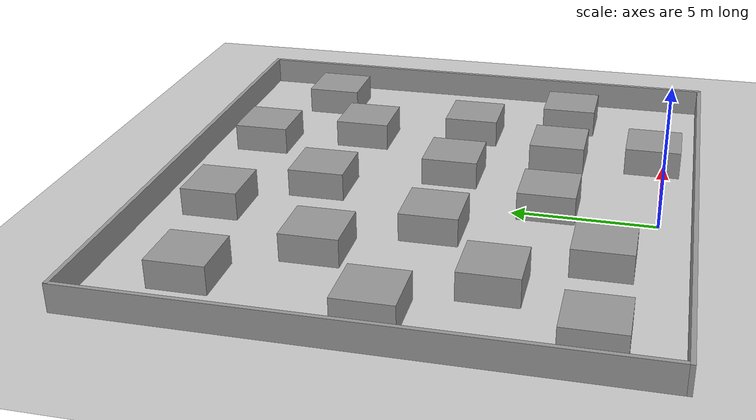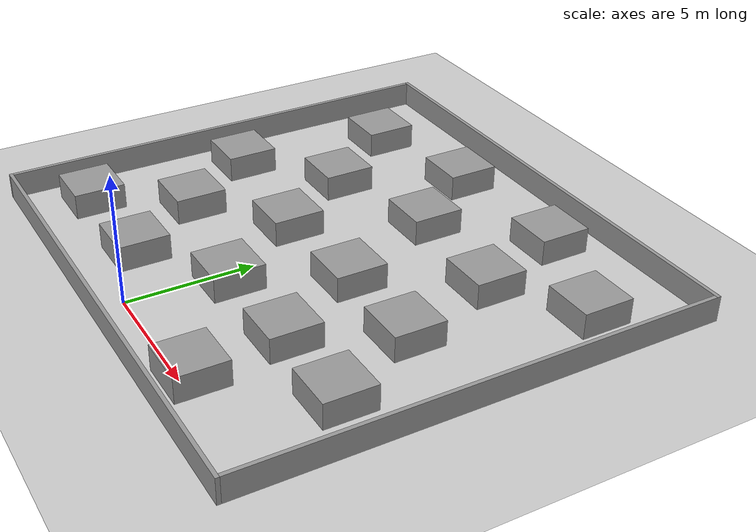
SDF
<sdf version="1.6">
 <world name="default">
  <light name="sun" type="directional">
   <pose>0 0 10 0 -0 0</pose>
   <diffuse>0.8 0.8 0.8 1</diffuse>
   <specular>0.2 0.2 0.2 1</specular>
   <attenuation>
    <range>1000</range>
    <constant>0.9</constant>
    <linear>0.01</linear>
    <quadratic>0.001</quadratic>
   </attenuation>
   <direction>-0.5 0.1 -0.9</direction>
  </light>
  <model name="ground_plane">
   <static>1</static>
   <link name="link">
    <collision name="collision">
     <geometry><plane><normal>0 0 1</normal><size>100 100</size></plane></geometry>
     <surface><friction><ode><mu>100</mu><mu2>50</mu2></ode></friction></surface>
    </collision>
    <visual name="visual">
     <cast_shadows>0</cast_shadows>
     <geometry><plane><normal>0 0 1</normal><size>100 100</size></plane></geometry>
     <material>
      <script><uri>file://media/materials/scripts/gazebo.material</uri><name>Gazebo/Grey</name></script>
     </material>
    </visual>
   </link>
  </model>
  <gravity>0 0 -9.8</gravity>
  <magnetic_field>6e-06 2.3e-05 -4.2e-05</magnetic_field>
  <atmosphere type="adiabatic"/>
  <physics name="default_physics" default="0" type="ode">
   <max_step_size>0.001</max_step_size>
   <real_time_factor>1</real_time_factor>
   <real_time_update_rate>1000</real_time_update_rate>
  </physics>
  <scene><ambient>0.4 0.4 0.4 1</ambient><background>0.7 0.7 0.7 1</background><shadows>1</shadows></scene>
  <spherical_coordinates>
   <surface_model>EARTH_WGS84</surface_model>
   <latitude_deg>0</latitude_deg>
   <longitude_deg>0</longitude_deg>
   <elevation>0</elevation>
   <heading_deg>0</heading_deg>
  </spherical_coordinates>
  <model name="map1">
   <pose>0.69437 8.013 0 0 -0 0</pose>
   <link name="Wall_0">
    <collision name="Wall_0_Collision">
     <geometry><box><size>20 0.15 1</size></box></geometry>
     <pose>0 0 0.5 0 -0 0</pose>
    </collision>
    <visual name="Wall_0_Visual">
     <pose>0 0 0.5 0 -0 0</pose>
     <geometry><box><size>20 0.15 1</size></box></geometry>
     <material>
      <script><uri>file://media/materials/scripts/gazebo.material</uri><name>Gazebo/Grey</name></script>
      <ambient>1 1 1 1</ambient>
     </material>
     <meta><layer>0</layer></meta>
    </visual>
    <pose>0 9.175 0 0 -0 0</pose>
   </link>
   <link name="Wall_3">
    <collision name="Wall_3_Collision">
     <geometry><box><size>18.5 0.15 1</size></box></geometry>
     <pose>0 0 0.5 0 -0 0</pose>
    </collision>
    <visual name="Wall_3_Visual">
     <pose>0 0 0.5 0 -0 0</pose>
     <geometry><box><size>18.5 0.15 1</size></box></geometry>
     <material>
      <script><uri>file://media/materials/scripts/gazebo.material</uri><name>Gazebo/Grey</name></script>
      <ambient>1 1 1 1</ambient>
     </material>
     <meta><layer>0</layer></meta>
    </visual>
    <pose>9.925 0 0 0 -0 -1.5708</pose>
   </link>
   <link name="Wall_4">
    <collision name="Wall_4_Collision">
     <geometry><box><size>20 0.15 1</size></box></geometry>
     <pose>0 0 0.5 0 -0 0</pose>
    </collision>
    <visual name="Wall_4_Visual">
     <pose>0 0 0.5 0 -0 0</pose>
     <geometry><box><size>20 0.15 1</size></box></geometry>
     <material>
      <script><uri>file://media/materials/scripts/gazebo.material</uri><name>Gazebo/Grey</name></script>
      <ambient>1 1 1 1</ambient>
     </material>
     <meta><layer>0</layer></meta>
    </visual>
    <pose>0 -9.175 0 0 -0 3.14159</pose>
   </link>
   <link name="Wall_5">
    <collision name="Wall_5_Collision">
     <geometry><box><size>18.5 0.15 1</size></box></geometry>
     <pose>0 0 0.5 0 -0 0</pose>
    </collision>
    <visual name="Wall_5_Visual">
     <pose>0 0 0.5 0 -0 0</pose>
     <geometry><box><size>18.5 0.15 1</size></box></geometry>
     <material>
      <script><uri>file://media/materials/scripts/gazebo.material</uri><name>Gazebo/Grey</name></script>
      <ambient>1 1 1 1</ambient>
     </material>
     <meta><layer>0</layer></meta>
    </visual>
    <pose>-9.925 0 0 0 -0 1.5708</pose>
   </link>
   <static>1</static>
  </model>
  <model name="box3">
   <link name="link_0">
    <inertial>
     <mass>200</mass>
     <inertia><ixx>83.3333</ixx><ixy>0</ixy><ixz>0</ixz><iyy>83.3333</iyy><iyz>0</iyz><izz>133.333</izz></inertia>
     <pose>0 0 1 0 -0 0</pose>
    </inertial>
    <visual name="visual">
     <geometry><box><size>2 2 1</size></box></geometry>
     <material>
      <lighting>1</lighting>
      <script><uri>file://media/materials/scripts/gazebo.material</uri><name>Gazebo/Grey</name></script>
      <shader type="pixel"><normal_map>__default__</normal_map></shader>
      <ambient>0.3 0.3 0.3 1</ambient>
      <diffuse>0.7 0.7 0.7 1</diffuse>
      <specular>0.01 0.01 0.01 1</specular>
      <emissive>0 0 0 1</emissive>
     </material>
    </visual>
    <collision name="collision">
     <geometry><box><size>2 2 1</size></box></geometry>
     <surface>
      <friction>
       <ode><mu>1</mu><mu2>1</mu2><fdir1>0 0 0</fdir1><slip1>0</slip1><slip2>0</slip2></ode>
       <torsional>
        <coefficient>1</coefficient>
        <patch_radius>0</patch_radius>
        <surface_radius>0</surface_radius>
        <use_patch_radius>1</use_patch_radius>
        <ode><slip>0</slip></ode>
       </torsional>
      </friction>
      <bounce><restitution_coefficient>0</restitution_coefficient><threshold>1e+06</threshold></bounce>
      <contact>
       <collide_without_contact>0</collide_without_contact>
       <collide_without_contact_bitmask>1</collide_without_contact_bitmask>
       <collide_bitmask>1</collide_bitmask>
       <ode>
        <soft_cfm>0</soft_cfm>
        <soft_erp>0.2</soft_erp>
        <kp>1e+13</kp>
        <kd>1</kd>
        <max_vel>0.01</max_vel>
        <min_depth>0</min_depth>
       </ode>
       <bullet>
        <split_impulse>1</split_impulse>
        <split_impulse_penetration_threshold>-0.01</split_impulse_penetration_threshold>
        <soft_cfm>0</soft_cfm>
        <soft_erp>0.2</soft_erp>
        <kp>1e+13</kp>
        <kd>1</kd>
       </bullet>
      </contact>
     </surface>
    </collision>
   </link>
   <static>0</static>
   <pose>-2.92137 1.59133 0.499999 -1e-06 2e-06 0.000103</pose>
  </model>
  <model name="box3_clone">
   <link name="link_0">
    <inertial>
     <mass>200</mass>
     <inertia><ixx>83.3333</ixx><ixy>0</ixy><ixz>0</ixz><iyy>83.3333</iyy><iyz>0</iyz><izz>133.333</izz></inertia>
     <pose>0 0 1 0 -0 0</pose>
    </inertial>
    <visual name="visual">
     <geometry><box><size>2 2 1</size></box></geometry>
     <material>
      <lighting>1</lighting>
      <script><uri>file://media/materials/scripts/gazebo.material</uri><name>Gazebo/Grey</name></script>
      <shader type="pixel"><normal_map>__default__</normal_map></shader>
      <ambient>0.3 0.3 0.3 1</ambient>
      <diffuse>0.7 0.7 0.7 1</diffuse>
      <specular>0.01 0.01 0.01 1</specular>
      <emissive>0 0 0 1</emissive>
     </material>
    </visual>
    <collision name="collision">
     <geometry><box><size>2 2 1</size></box></geometry>
     <surface>
      <friction>
       <ode><mu>1</mu><mu2>1</mu2><fdir1>0 0 0</fdir1><slip1>0</slip1><slip2>0</slip2></ode>
       <torsional>
        <coefficient>1</coefficient>
        <patch_radius>0</patch_radius>
        <surface_radius>0</surface_radius>
        <use_patch_radius>1</use_patch_radius>
        <ode><slip>0</slip></ode>
       </torsional>
      </friction>
      <bounce><restitution_coefficient>0</restitution_coefficient><threshold>1e+06</threshold></bounce>
      <contact>
       <collide_without_contact>0</collide_without_contact>
       <collide_without_contact_bitmask>1</collide_without_contact_bitmask>
       <collide_bitmask>1</collide_bitmask>
       <ode>
        <soft_cfm>0</soft_cfm>
        <soft_erp>0.2</soft_erp>
        <kp>1e+13</kp>
        <kd>1</kd>
        <max_vel>0.01</max_vel>
        <min_depth>0</min_depth>
       </ode>
       <bullet>
        <split_impulse>1</split_impulse>
        <split_impulse_penetration_threshold>-0.01</split_impulse_penetration_threshold>
        <soft_cfm>0</soft_cfm>
        <soft_erp>0.2</soft_erp>
        <kp>1e+13</kp>
        <kd>1</kd>
       </bullet>
      </contact>
     </surface>
    </collision>
   </link>
   <static>0</static>
   <pose>0.552627 3.76358 0.5 0 -0 0.000101</pose>
  </model>
  <model name="box3_clone_0">
   <link name="link_0">
    <inertial>
     <mass>200</mass>
     <inertia><ixx>83.3333</ixx><ixy>0</ixy><ixz>0</ixz><iyy>83.3333</iyy><iyz>0</iyz><izz>133.333</izz></inertia>
     <pose>0 0 1 0 -0 0</pose>
    </inertial>
    <visual name="visual">
     <geometry><box><size>2 2 1</size></box></geometry>
     <material>
      <lighting>1</lighting>
      <script><uri>file://media/materials/scripts/gazebo.material</uri><name>Gazebo/Grey</name></script>
      <shader type="pixel"><normal_map>__default__</normal_map></shader>
      <ambient>0.3 0.3 0.3 1</ambient>
      <diffuse>0.7 0.7 0.7 1</diffuse>
      <specular>0.01 0.01 0.01 1</specular>
      <emissive>0 0 0 1</emissive>
     </material>
    </visual>
    <collision name="collision">
     <geometry><box><size>2 2 1</size></box></geometry>
     <surface>
      <friction>
       <ode><mu>1</mu><mu2>1</mu2><fdir1>0 0 0</fdir1><slip1>0</slip1><slip2>0</slip2></ode>
       <torsional>
        <coefficient>1</coefficient>
        <patch_radius>0</patch_radius>
        <surface_radius>0</surface_radius>
        <use_patch_radius>1</use_patch_radius>
        <ode><slip>0</slip></ode>
       </torsional>
      </friction>
      <bounce><restitution_coefficient>0</restitution_coefficient><threshold>1e+06</threshold></bounce>
      <contact>
       <collide_without_contact>0</collide_without_contact>
       <collide_without_contact_bitmask>1</collide_without_contact_bitmask>
       <collide_bitmask>1</collide_bitmask>
       <ode>
        <soft_cfm>0</soft_cfm>
        <soft_erp>0.2</soft_erp>
        <kp>1e+13</kp>
        <kd>1</kd>
        <max_vel>0.01</max_vel>
        <min_depth>0</min_depth>
       </ode>
       <bullet>
        <split_impulse>1</split_impulse>
        <split_impulse_penetration_threshold>-0.01</split_impulse_penetration_threshold>
        <soft_cfm>0</soft_cfm>
        <soft_erp>0.2</soft_erp>
        <kp>1e+13</kp>
        <kd>1</kd>
       </bullet>
      </contact>
     </surface>
    </collision>
   </link>
   <static>0</static>
   <pose>4.61992 3.90113 0.499999 -1e-06 2e-06 0.000101</pose>
  </model>
  <model name="box3_clone_1">
   <link name="link_0">
    <inertial>
     <mass>200</mass>
     <inertia><ixx>83.3333</ixx><ixy>0</ixy><ixz>0</ixz><iyy>83.3333</iyy><iyz>0</iyz><izz>133.333</izz></inertia>
     <pose>0 0 1 0 -0 0</pose>
    </inertial>
    <visual name="visual">
     <geometry><box><size>2 2 1</size></box></geometry>
     <material>
      <lighting>1</lighting>
      <script><uri>file://media/materials/scripts/gazebo.material</uri><name>Gazebo/Grey</name></script>
      <shader type="pixel"><normal_map>__default__</normal_map></shader>
      <ambient>0.3 0.3 0.3 1</ambient>
      <diffuse>0.7 0.7 0.7 1</diffuse>
      <specular>0.01 0.01 0.01 1</specular>
      <emissive>0 0 0 1</emissive>
     </material>
    </visual>
    <collision name="collision">
     <geometry><box><size>2 2 1</size></box></geometry>
     <surface>
      <friction>
       <ode><mu>1</mu><mu2>1</mu2><fdir1>0 0 0</fdir1><slip1>0</slip1><slip2>0</slip2></ode>
       <torsional>
        <coefficient>1</coefficient>
        <patch_radius>0</patch_radius>
        <surface_radius>0</surface_radius>
        <use_patch_radius>1</use_patch_radius>
        <ode><slip>0</slip></ode>
       </torsional>
      </friction>
      <bounce><restitution_coefficient>0</restitution_coefficient><threshold>1e+06</threshold></bounce>
      <contact>
       <collide_without_contact>0</collide_without_contact>
       <collide_without_contact_bitmask>1</collide_without_contact_bitmask>
       <collide_bitmask>1</collide_bitmask>
       <ode>
        <soft_cfm>0</soft_cfm>
        <soft_erp>0.2</soft_erp>
        <kp>1e+13</kp>
        <kd>1</kd>
        <max_vel>0.01</max_vel>
        <min_depth>0</min_depth>
       </ode>
       <bullet>
        <split_impulse>1</split_impulse>
        <split_impulse_penetration_threshold>-0.01</split_impulse_penetration_threshold>
        <soft_cfm>0</soft_cfm>
        <soft_erp>0.2</soft_erp>
        <kp>1e+13</kp>
        <kd>1</kd>
       </bullet>
      </contact>
     </surface>
    </collision>
   </link>
   <static>0</static>
   <pose>8.29547 3.85447 0.5 0 -0 0.000103</pose>
  </model>
  <model name="box3_clone_2">
   <link name="link_0">
    <inertial>
     <mass>200</mass>
     <inertia><ixx>83.3333</ixx><ixy>0</ixy><ixz>0</ixz><iyy>83.3333</iyy><iyz>0</iyz><izz>133.333</izz></inertia>
     <pose>0 0 1 0 -0 0</pose>
    </inertial>
    <visual name="visual">
     <geometry><box><size>2 2 1</size></box></geometry>
     <material>
      <lighting>1</lighting>
      <script><uri>file://media/materials/scripts/gazebo.material</uri><name>Gazebo/Grey</name></script>
      <shader type="pixel"><normal_map>__default__</normal_map></shader>
      <ambient>0.3 0.3 0.3 1</ambient>
      <diffuse>0.7 0.7 0.7 1</diffuse>
      <specular>0.01 0.01 0.01 1</specular>
      <emissive>0 0 0 1</emissive>
     </material>
    </visual>
    <collision name="collision">
     <geometry><box><size>2 2 1</size></box></geometry>
     <surface>
      <friction>
       <ode><mu>1</mu><mu2>1</mu2><fdir1>0 0 0</fdir1><slip1>0</slip1><slip2>0</slip2></ode>
       <torsional>
        <coefficient>1</coefficient>
        <patch_radius>0</patch_radius>
        <surface_radius>0</surface_radius>
        <use_patch_radius>1</use_patch_radius>
        <ode><slip>0</slip></ode>
       </torsional>
      </friction>
      <bounce><restitution_coefficient>0</restitution_coefficient><threshold>1e+06</threshold></bounce>
      <contact>
       <collide_without_contact>0</collide_without_contact>
       <collide_without_contact_bitmask>1</collide_without_contact_bitmask>
       <collide_bitmask>1</collide_bitmask>
       <ode>
        <soft_cfm>0</soft_cfm>
        <soft_erp>0.2</soft_erp>
        <kp>1e+13</kp>
        <kd>1</kd>
        <max_vel>0.01</max_vel>
        <min_depth>0</min_depth>
       </ode>
       <bullet>
        <split_impulse>1</split_impulse>
        <split_impulse_penetration_threshold>-0.01</split_impulse_penetration_threshold>
        <soft_cfm>0</soft_cfm>
        <soft_erp>0.2</soft_erp>
        <kp>1e+13</kp>
        <kd>1</kd>
       </bullet>
      </contact>
     </surface>
    </collision>
   </link>
   <static>0</static>
   <pose>6.46975 7.45687 0.499999 1e-06 -2e-06 0.000103</pose>
  </model>
  <model name="box3_clone_3">
   <link name="link_0">
    <inertial>
     <mass>200</mass>
     <inertia><ixx>83.3333</ixx><ixy>0</ixy><ixz>0</ixz><iyy>83.3333</iyy><iyz>0</iyz><izz>133.333</izz></inertia>
     <pose>0 0 1 0 -0 0</pose>
    </inertial>
    <visual name="visual">
     <geometry><box><size>2 2 1</size></box></geometry>
     <material>
      <lighting>1</lighting>
      <script><uri>file://media/materials/scripts/gazebo.material</uri><name>Gazebo/Grey</name></script>
      <shader type="pixel"><normal_map>__default__</normal_map></shader>
      <ambient>0.3 0.3 0.3 1</ambient>
      <diffuse>0.7 0.7 0.7 1</diffuse>
      <specular>0.01 0.01 0.01 1</specular>
      <emissive>0 0 0 1</emissive>
     </material>
    </visual>
    <collision name="collision">
     <geometry><box><size>2 2 1</size></box></geometry>
     <surface>
      <friction>
       <ode><mu>1</mu><mu2>1</mu2><fdir1>0 0 0</fdir1><slip1>0</slip1><slip2>0</slip2></ode>
       <torsional>
        <coefficient>1</coefficient>
        <patch_radius>0</patch_radius>
        <surface_radius>0</surface_radius>
        <use_patch_radius>1</use_patch_radius>
        <ode><slip>0</slip></ode>
       </torsional>
      </friction>
      <bounce><restitution_coefficient>0</restitution_coefficient><threshold>1e+06</threshold></bounce>
      <contact>
       <collide_without_contact>0</collide_without_contact>
       <collide_without_contact_bitmask>1</collide_without_contact_bitmask>
       <collide_bitmask>1</collide_bitmask>
       <ode>
        <soft_cfm>0</soft_cfm>
        <soft_erp>0.2</soft_erp>
        <kp>1e+13</kp>
        <kd>1</kd>
        <max_vel>0.01</max_vel>
        <min_depth>0</min_depth>
       </ode>
       <bullet>
        <split_impulse>1</split_impulse>
        <split_impulse_penetration_threshold>-0.01</split_impulse_penetration_threshold>
        <soft_cfm>0</soft_cfm>
        <soft_erp>0.2</soft_erp>
        <kp>1e+13</kp>
        <kd>1</kd>
       </bullet>
      </contact>
     </surface>
    </collision>
   </link>
   <static>0</static>
   <pose>2.56214 7.514 0.499999 -1e-06 -2e-06 9.7e-05</pose>
  </model>
  <model name="box3_clone_4">
   <link name="link_0">
    <inertial>
     <mass>200</mass>
     <inertia><ixx>83.3333</ixx><ixy>0</ixy><ixz>0</ixz><iyy>83.3333</iyy><iyz>0</iyz><izz>133.333</izz></inertia>
     <pose>0 0 1 0 -0 0</pose>
    </inertial>
    <visual name="visual">
     <geometry><box><size>2 2 1</size></box></geometry>
     <material>
      <lighting>1</lighting>
      <script><uri>file://media/materials/scripts/gazebo.material</uri><name>Gazebo/Grey</name></script>
      <shader type="pixel"><normal_map>__default__</normal_map></shader>
      <ambient>0.3 0.3 0.3 1</ambient>
      <diffuse>0.7 0.7 0.7 1</diffuse>
      <specular>0.01 0.01 0.01 1</specular>
      <emissive>0 0 0 1</emissive>
     </material>
    </visual>
    <collision name="collision">
     <geometry><box><size>2 2 1</size></box></geometry>
     <surface>
      <friction>
       <ode><mu>1</mu><mu2>1</mu2><fdir1>0 0 0</fdir1><slip1>0</slip1><slip2>0</slip2></ode>
       <torsional>
        <coefficient>1</coefficient>
        <patch_radius>0</patch_radius>
        <surface_radius>0</surface_radius>
        <use_patch_radius>1</use_patch_radius>
        <ode><slip>0</slip></ode>
       </torsional>
      </friction>
      <bounce><restitution_coefficient>0</restitution_coefficient><threshold>1e+06</threshold></bounce>
      <contact>
       <collide_without_contact>0</collide_without_contact>
       <collide_without_contact_bitmask>1</collide_without_contact_bitmask>
       <collide_bitmask>1</collide_bitmask>
       <ode>
        <soft_cfm>0</soft_cfm>
        <soft_erp>0.2</soft_erp>
        <kp>1e+13</kp>
        <kd>1</kd>
        <max_vel>0.01</max_vel>
        <min_depth>0</min_depth>
       </ode>
       <bullet>
        <split_impulse>1</split_impulse>
        <split_impulse_penetration_threshold>-0.01</split_impulse_penetration_threshold>
        <soft_cfm>0</soft_cfm>
        <soft_erp>0.2</soft_erp>
        <kp>1e+13</kp>
        <kd>1</kd>
       </bullet>
      </contact>
     </surface>
    </collision>
   </link>
   <static>0</static>
   <pose>-1.79461 7.30525 0.5 0 -0 9.6e-05</pose>
  </model>
  <model name="box3_clone_5">
   <link name="link_0">
    <inertial>
     <mass>200</mass>
     <inertia><ixx>83.3333</ixx><ixy>0</ixy><ixz>0</ixz><iyy>83.3333</iyy><iyz>0</iyz><izz>133.333</izz></inertia>
     <pose>0 0 1 0 -0 0</pose>
    </inertial>
    <visual name="visual">
     <geometry><box><size>2 2 1</size></box></geometry>
     <material>
      <lighting>1</lighting>
      <script><uri>file://media/materials/scripts/gazebo.material</uri><name>Gazebo/Grey</name></script>
      <shader type="pixel"><normal_map>__default__</normal_map></shader>
      <ambient>0.3 0.3 0.3 1</ambient>
      <diffuse>0.7 0.7 0.7 1</diffuse>
      <specular>0.01 0.01 0.01 1</specular>
      <emissive>0 0 0 1</emissive>
     </material>
    </visual>
    <collision name="collision">
     <geometry><box><size>2 2 1</size></box></geometry>
     <surface>
      <friction>
       <ode><mu>1</mu><mu2>1</mu2><fdir1>0 0 0</fdir1><slip1>0</slip1><slip2>0</slip2></ode>
       <torsional>
        <coefficient>1</coefficient>
        <patch_radius>0</patch_radius>
        <surface_radius>0</surface_radius>
        <use_patch_radius>1</use_patch_radius>
        <ode><slip>0</slip></ode>
       </torsional>
      </friction>
      <bounce><restitution_coefficient>0</restitution_coefficient><threshold>1e+06</threshold></bounce>
      <contact>
       <collide_without_contact>0</collide_without_contact>
       <collide_without_contact_bitmask>1</collide_without_contact_bitmask>
       <collide_bitmask>1</collide_bitmask>
       <ode>
        <soft_cfm>0</soft_cfm>
        <soft_erp>0.2</soft_erp>
        <kp>1e+13</kp>
        <kd>1</kd>
        <max_vel>0.01</max_vel>
        <min_depth>0</min_depth>
       </ode>
       <bullet>
        <split_impulse>1</split_impulse>
        <split_impulse_penetration_threshold>-0.01</split_impulse_penetration_threshold>
        <soft_cfm>0</soft_cfm>
        <soft_erp>0.2</soft_erp>
        <kp>1e+13</kp>
        <kd>1</kd>
       </bullet>
      </contact>
     </surface>
    </collision>
   </link>
   <static>0</static>
   <pose>-5.05082 4.75345 0.499999 1e-06 2e-06 -0.000171</pose>
  </model>
  <model name="box3_clone_6">
   <link name="link_0">
    <inertial>
     <mass>200</mass>
     <inertia><ixx>83.3333</ixx><ixy>0</ixy><ixz>0</ixz><iyy>83.3333</iyy><iyz>0</iyz><izz>133.333</izz></inertia>
     <pose>0 0 1 0 -0 0</pose>
    </inertial>
    <visual name="visual">
     <geometry><box><size>2 2 1</size></box></geometry>
     <material>
      <lighting>1</lighting>
      <script><uri>file://media/materials/scripts/gazebo.material</uri><name>Gazebo/Grey</name></script>
      <shader type="pixel"><normal_map>__default__</normal_map></shader>
      <ambient>0.3 0.3 0.3 1</ambient>
      <diffuse>0.7 0.7 0.7 1</diffuse>
      <specular>0.01 0.01 0.01 1</specular>
      <emissive>0 0 0 1</emissive>
     </material>
    </visual>
    <collision name="collision">
     <geometry><box><size>2 2 1</size></box></geometry>
     <surface>
      <friction>
       <ode><mu>1</mu><mu2>1</mu2><fdir1>0 0 0</fdir1><slip1>0</slip1><slip2>0</slip2></ode>
       <torsional>
        <coefficient>1</coefficient>
        <patch_radius>0</patch_radius>
        <surface_radius>0</surface_radius>
        <use_patch_radius>1</use_patch_radius>
        <ode><slip>0</slip></ode>
       </torsional>
      </friction>
      <bounce><restitution_coefficient>0</restitution_coefficient><threshold>1e+06</threshold></bounce>
      <contact>
       <collide_without_contact>0</collide_without_contact>
       <collide_without_contact_bitmask>1</collide_without_contact_bitmask>
       <collide_bitmask>1</collide_bitmask>
       <ode>
        <soft_cfm>0</soft_cfm>
        <soft_erp>0.2</soft_erp>
        <kp>1e+13</kp>
        <kd>1</kd>
        <max_vel>0.01</max_vel>
        <min_depth>0</min_depth>
       </ode>
       <bullet>
        <split_impulse>1</split_impulse>
        <split_impulse_penetration_threshold>-0.01</split_impulse_penetration_threshold>
        <soft_cfm>0</soft_cfm>
        <soft_erp>0.2</soft_erp>
        <kp>1e+13</kp>
        <kd>1</kd>
       </bullet>
      </contact>
     </surface>
    </collision>
   </link>
   <static>0</static>
   <pose>-7.25453 7.97885 0.499999 -1e-06 -2e-06 9.9e-05</pose>
  </model>
  <model name="box3_clone_7">
   <link name="link_0">
    <inertial>
     <mass>200</mass>
     <inertia><ixx>83.3333</ixx><ixy>0</ixy><ixz>0</ixz><iyy>83.3333</iyy><iyz>0</iyz><izz>133.333</izz></inertia>
     <pose>0 0 1 0 -0 0</pose>
    </inertial>
    <visual name="visual">
     <geometry><box><size>2 2 1</size></box></geometry>
     <material>
      <lighting>1</lighting>
      <script><uri>file://media/materials/scripts/gazebo.material</uri><name>Gazebo/Grey</name></script>
      <shader type="pixel"><normal_map>__default__</normal_map></shader>
      <ambient>0.3 0.3 0.3 1</ambient>
      <diffuse>0.7 0.7 0.7 1</diffuse>
      <specular>0.01 0.01 0.01 1</specular>
      <emissive>0 0 0 1</emissive>
     </material>
    </visual>
    <collision name="collision">
     <geometry><box><size>2 2 1</size></box></geometry>
     <surface>
      <friction>
       <ode><mu>1</mu><mu2>1</mu2><fdir1>0 0 0</fdir1><slip1>0</slip1><slip2>0</slip2></ode>
       <torsional>
        <coefficient>1</coefficient>
        <patch_radius>0</patch_radius>
        <surface_radius>0</surface_radius>
        <use_patch_radius>1</use_patch_radius>
        <ode><slip>0</slip></ode>
       </torsional>
      </friction>
      <bounce><restitution_coefficient>0</restitution_coefficient><threshold>1e+06</threshold></bounce>
      <contact>
       <collide_without_contact>0</collide_without_contact>
       <collide_without_contact_bitmask>1</collide_without_contact_bitmask>
       <collide_bitmask>1</collide_bitmask>
       <ode>
        <soft_cfm>0</soft_cfm>
        <soft_erp>0.2</soft_erp>
        <kp>1e+13</kp>
        <kd>1</kd>
        <max_vel>0.01</max_vel>
        <min_depth>0</min_depth>
       </ode>
       <bullet>
        <split_impulse>1</split_impulse>
        <split_impulse_penetration_threshold>-0.01</split_impulse_penetration_threshold>
        <soft_cfm>0</soft_cfm>
        <soft_erp>0.2</soft_erp>
        <kp>1e+13</kp>
        <kd>1</kd>
       </bullet>
      </contact>
     </surface>
    </collision>
   </link>
   <static>0</static>
   <pose>-3.94534 10.671 0.5 0 -0 9.8e-05</pose>
  </model>
  <model name="box3_clone_8">
   <link name="link_0">
    <inertial>
     <mass>200</mass>
     <inertia><ixx>83.3333</ixx><ixy>0</ixy><ixz>0</ixz><iyy>83.3333</iyy><iyz>0</iyz><izz>133.333</izz></inertia>
     <pose>0 0 1 0 -0 0</pose>
    </inertial>
    <visual name="visual">
     <geometry><box><size>2 2 1</size></box></geometry>
     <material>
      <lighting>1</lighting>
      <script><uri>file://media/materials/scripts/gazebo.material</uri><name>Gazebo/Grey</name></script>
      <shader type="pixel"><normal_map>__default__</normal_map></shader>
      <ambient>0.3 0.3 0.3 1</ambient>
      <diffuse>0.7 0.7 0.7 1</diffuse>
      <specular>0.01 0.01 0.01 1</specular>
      <emissive>0 0 0 1</emissive>
     </material>
    </visual>
    <collision name="collision">
     <geometry><box><size>2 2 1</size></box></geometry>
     <surface>
      <friction>
       <ode><mu>1</mu><mu2>1</mu2><fdir1>0 0 0</fdir1><slip1>0</slip1><slip2>0</slip2></ode>
       <torsional>
        <coefficient>1</coefficient>
        <patch_radius>0</patch_radius>
        <surface_radius>0</surface_radius>
        <use_patch_radius>1</use_patch_radius>
        <ode><slip>0</slip></ode>
       </torsional>
      </friction>
      <bounce><restitution_coefficient>0</restitution_coefficient><threshold>1e+06</threshold></bounce>
      <contact>
       <collide_without_contact>0</collide_without_contact>
       <collide_without_contact_bitmask>1</collide_without_contact_bitmask>
       <collide_bitmask>1</collide_bitmask>
       <ode>
        <soft_cfm>0</soft_cfm>
        <soft_erp>0.2</soft_erp>
        <kp>1e+13</kp>
        <kd>1</kd>
        <max_vel>0.01</max_vel>
        <min_depth>0</min_depth>
       </ode>
       <bullet>
        <split_impulse>1</split_impulse>
        <split_impulse_penetration_threshold>-0.01</split_impulse_penetration_threshold>
        <soft_cfm>0</soft_cfm>
        <soft_erp>0.2</soft_erp>
        <kp>1e+13</kp>
        <kd>1</kd>
       </bullet>
      </contact>
     </surface>
    </collision>
   </link>
   <static>0</static>
   <pose>0.623017 11.9065 0.499999 1e-06 2e-06 0.000101</pose>
  </model>
  <model name="box3_clone_9">
   <link name="link_0">
    <inertial>
     <mass>200</mass>
     <inertia><ixx>83.3333</ixx><ixy>0</ixy><ixz>0</ixz><iyy>83.3333</iyy><iyz>0</iyz><izz>133.333</izz></inertia>
     <pose>0 0 1 0 -0 0</pose>
    </inertial>
    <visual name="visual">
     <geometry><box><size>2 2 1</size></box></geometry>
     <material>
      <lighting>1</lighting>
      <script><uri>file://media/materials/scripts/gazebo.material</uri><name>Gazebo/Grey</name></script>
      <shader type="pixel"><normal_map>__default__</normal_map></shader>
      <ambient>0.3 0.3 0.3 1</ambient>
      <diffuse>0.7 0.7 0.7 1</diffuse>
      <specular>0.01 0.01 0.01 1</specular>
      <emissive>0 0 0 1</emissive>
     </material>
    </visual>
    <collision name="collision">
     <geometry><box><size>2 2 1</size></box></geometry>
     <surface>
      <friction>
       <ode><mu>1</mu><mu2>1</mu2><fdir1>0 0 0</fdir1><slip1>0</slip1><slip2>0</slip2></ode>
       <torsional>
        <coefficient>1</coefficient>
        <patch_radius>0</patch_radius>
        <surface_radius>0</surface_radius>
        <use_patch_radius>1</use_patch_radius>
        <ode><slip>0</slip></ode>
       </torsional>
      </friction>
      <bounce><restitution_coefficient>0</restitution_coefficient><threshold>1e+06</threshold></bounce>
      <contact>
       <collide_without_contact>0</collide_without_contact>
       <collide_without_contact_bitmask>1</collide_without_contact_bitmask>
       <collide_bitmask>1</collide_bitmask>
       <ode>
        <soft_cfm>0</soft_cfm>
        <soft_erp>0.2</soft_erp>
        <kp>1e+13</kp>
        <kd>1</kd>
        <max_vel>0.01</max_vel>
        <min_depth>0</min_depth>
       </ode>
       <bullet>
        <split_impulse>1</split_impulse>
        <split_impulse_penetration_threshold>-0.01</split_impulse_penetration_threshold>
        <soft_cfm>0</soft_cfm>
        <soft_erp>0.2</soft_erp>
        <kp>1e+13</kp>
        <kd>1</kd>
       </bullet>
      </contact>
     </surface>
    </collision>
   </link>
   <static>0</static>
   <pose>5.24878 11.5128 0.5 0 -0 0.0001</pose>
  </model>
  <model name="box3_clone_10">
   <link name="link_0">
    <inertial>
     <mass>200</mass>
     <inertia><ixx>83.3333</ixx><ixy>0</ixy><ixz>0</ixz><iyy>83.3333</iyy><iyz>0</iyz><izz>133.333</izz></inertia>
     <pose>0 0 1 0 -0 0</pose>
    </inertial>
    <visual name="visual">
     <geometry><box><size>2 2 1</size></box></geometry>
     <material>
      <lighting>1</lighting>
      <script><uri>file://media/materials/scripts/gazebo.material</uri><name>Gazebo/Grey</name></script>
      <shader type="pixel"><normal_map>__default__</normal_map></shader>
      <ambient>0.3 0.3 0.3 1</ambient>
      <diffuse>0.7 0.7 0.7 1</diffuse>
      <specular>0.01 0.01 0.01 1</specular>
      <emissive>0 0 0 1</emissive>
     </material>
    </visual>
    <collision name="collision">
     <geometry><box><size>2 2 1</size></box></geometry>
     <surface>
      <friction>
       <ode><mu>1</mu><mu2>1</mu2><fdir1>0 0 0</fdir1><slip1>0</slip1><slip2>0</slip2></ode>
       <torsional>
        <coefficient>1</coefficient>
        <patch_radius>0</patch_radius>
        <surface_radius>0</surface_radius>
        <use_patch_radius>1</use_patch_radius>
        <ode><slip>0</slip></ode>
       </torsional>
      </friction>
      <bounce><restitution_coefficient>0</restitution_coefficient><threshold>1e+06</threshold></bounce>
      <contact>
       <collide_without_contact>0</collide_without_contact>
       <collide_without_contact_bitmask>1</collide_without_contact_bitmask>
       <collide_bitmask>1</collide_bitmask>
       <ode>
        <soft_cfm>0</soft_cfm>
        <soft_erp>0.2</soft_erp>
        <kp>1e+13</kp>
        <kd>1</kd>
        <max_vel>0.01</max_vel>
        <min_depth>0</min_depth>
       </ode>
       <bullet>
        <split_impulse>1</split_impulse>
        <split_impulse_penetration_threshold>-0.01</split_impulse_penetration_threshold>
        <soft_cfm>0</soft_cfm>
        <soft_erp>0.2</soft_erp>
        <kp>1e+13</kp>
        <kd>1</kd>
       </bullet>
      </contact>
     </surface>
    </collision>
   </link>
   <static>0</static>
   <pose>8.38646 13.607 0.499999 -1e-06 2e-06 9.9e-05</pose>
  </model>
  <model name="box3_clone_11">
   <link name="link_0">
    <inertial>
     <mass>200</mass>
     <inertia><ixx>83.3333</ixx><ixy>0</ixy><ixz>0</ixz><iyy>83.3333</iyy><iyz>0</iyz><izz>133.333</izz></inertia>
     <pose>0 0 1 0 -0 0</pose>
    </inertial>
    <visual name="visual">
     <geometry><box><size>2 2 1</size></box></geometry>
     <material>
      <lighting>1</lighting>
      <script><uri>file://media/materials/scripts/gazebo.material</uri><name>Gazebo/Grey</name></script>
      <shader type="pixel"><normal_map>__default__</normal_map></shader>
      <ambient>0.3 0.3 0.3 1</ambient>
      <diffuse>0.7 0.7 0.7 1</diffuse>
      <specular>0.01 0.01 0.01 1</specular>
      <emissive>0 0 0 1</emissive>
     </material>
    </visual>
    <collision name="collision">
     <geometry><box><size>2 2 1</size></box></geometry>
     <surface>
      <friction>
       <ode><mu>1</mu><mu2>1</mu2><fdir1>0 0 0</fdir1><slip1>0</slip1><slip2>0</slip2></ode>
       <torsional>
        <coefficient>1</coefficient>
        <patch_radius>0</patch_radius>
        <surface_radius>0</surface_radius>
        <use_patch_radius>1</use_patch_radius>
        <ode><slip>0</slip></ode>
       </torsional>
      </friction>
      <bounce><restitution_coefficient>0</restitution_coefficient><threshold>1e+06</threshold></bounce>
      <contact>
       <collide_without_contact>0</collide_without_contact>
       <collide_without_contact_bitmask>1</collide_without_contact_bitmask>
       <collide_bitmask>1</collide_bitmask>
       <ode>
        <soft_cfm>0</soft_cfm>
        <soft_erp>0.2</soft_erp>
        <kp>1e+13</kp>
        <kd>1</kd>
        <max_vel>0.01</max_vel>
        <min_depth>0</min_depth>
       </ode>
       <bullet>
        <split_impulse>1</split_impulse>
        <split_impulse_penetration_threshold>-0.01</split_impulse_penetration_threshold>
        <soft_cfm>0</soft_cfm>
        <soft_erp>0.2</soft_erp>
        <kp>1e+13</kp>
        <kd>1</kd>
       </bullet>
      </contact>
     </surface>
    </collision>
   </link>
   <static>0</static>
   <pose>-1.60578 14.9886 0.5 0 -0 0.000102</pose>
  </model>
  <model name="box3_clone_12">
   <link name="link_0">
    <inertial>
     <mass>200</mass>
     <inertia><ixx>83.3333</ixx><ixy>0</ixy><ixz>0</ixz><iyy>83.3333</iyy><iyz>0</iyz><izz>133.333</izz></inertia>
     <pose>0 0 1 0 -0 0</pose>
    </inertial>
    <visual name="visual">
     <geometry><box><size>2 2 1</size></box></geometry>
     <material>
      <lighting>1</lighting>
      <script><uri>file://media/materials/scripts/gazebo.material</uri><name>Gazebo/Grey</name></script>
      <shader type="pixel"><normal_map>__default__</normal_map></shader>
      <ambient>0.3 0.3 0.3 1</ambient>
      <diffuse>0.7 0.7 0.7 1</diffuse>
      <specular>0.01 0.01 0.01 1</specular>
      <emissive>0 0 0 1</emissive>
     </material>
    </visual>
    <collision name="collision">
     <geometry><box><size>2 2 1</size></box></geometry>
     <surface>
      <friction>
       <ode><mu>1</mu><mu2>1</mu2><fdir1>0 0 0</fdir1><slip1>0</slip1><slip2>0</slip2></ode>
       <torsional>
        <coefficient>1</coefficient>
        <patch_radius>0</patch_radius>
        <surface_radius>0</surface_radius>
        <use_patch_radius>1</use_patch_radius>
        <ode><slip>0</slip></ode>
       </torsional>
      </friction>
      <bounce><restitution_coefficient>0</restitution_coefficient><threshold>1e+06</threshold></bounce>
      <contact>
       <collide_without_contact>0</collide_without_contact>
       <collide_without_contact_bitmask>1</collide_without_contact_bitmask>
       <collide_bitmask>1</collide_bitmask>
       <ode>
        <soft_cfm>0</soft_cfm>
        <soft_erp>0.2</soft_erp>
        <kp>1e+13</kp>
        <kd>1</kd>
        <max_vel>0.01</max_vel>
        <min_depth>0</min_depth>
       </ode>
       <bullet>
        <split_impulse>1</split_impulse>
        <split_impulse_penetration_threshold>-0.01</split_impulse_penetration_threshold>
        <soft_cfm>0</soft_cfm>
        <soft_erp>0.2</soft_erp>
        <kp>1e+13</kp>
        <kd>1</kd>
       </bullet>
      </contact>
     </surface>
    </collision>
   </link>
   <static>0</static>
   <pose>-6.40223 14.064 0.499997 0 3e-06 9.7e-05</pose>
  </model>
  <model name="box3_clone_13">
   <link name="link_0">
    <inertial>
     <mass>200</mass>
     <inertia><ixx>83.3333</ixx><ixy>0</ixy><ixz>0</ixz><iyy>83.3333</iyy><iyz>0</iyz><izz>133.333</izz></inertia>
     <pose>0 0 1 0 -0 0</pose>
    </inertial>
    <visual name="visual">
     <geometry><box><size>2 2 1</size></box></geometry>
     <material>
      <lighting>1</lighting>
      <script><uri>file://media/materials/scripts/gazebo.material</uri><name>Gazebo/Grey</name></script>
      <shader type="pixel"><normal_map>__default__</normal_map></shader>
      <ambient>0.3 0.3 0.3 1</ambient>
      <diffuse>0.7 0.7 0.7 1</diffuse>
      <specular>0.01 0.01 0.01 1</specular>
      <emissive>0 0 0 1</emissive>
     </material>
    </visual>
    <collision name="collision">
     <geometry><box><size>2 2 1</size></box></geometry>
     <surface>
      <friction>
       <ode><mu>1</mu><mu2>1</mu2><fdir1>0 0 0</fdir1><slip1>0</slip1><slip2>0</slip2></ode>
       <torsional>
        <coefficient>1</coefficient>
        <patch_radius>0</patch_radius>
        <surface_radius>0</surface_radius>
        <use_patch_radius>1</use_patch_radius>
        <ode><slip>0</slip></ode>
       </torsional>
      </friction>
      <bounce><restitution_coefficient>0</restitution_coefficient><threshold>1e+06</threshold></bounce>
      <contact>
       <collide_without_contact>0</collide_without_contact>
       <collide_without_contact_bitmask>1</collide_without_contact_bitmask>
       <collide_bitmask>1</collide_bitmask>
       <ode>
        <soft_cfm>0</soft_cfm>
        <soft_erp>0.2</soft_erp>
        <kp>1e+13</kp>
        <kd>1</kd>
        <max_vel>0.01</max_vel>
        <min_depth>0</min_depth>
       </ode>
       <bullet>
        <split_impulse>1</split_impulse>
        <split_impulse_penetration_threshold>-0.01</split_impulse_penetration_threshold>
        <soft_cfm>0</soft_cfm>
        <soft_erp>0.2</soft_erp>
        <kp>1e+13</kp>
        <kd>1</kd>
       </bullet>
      </contact>
     </surface>
    </collision>
   </link>
   <static>0</static>
   <pose>-7.31891 1.47284 0.5 0 -0 9.8e-05</pose>
  </model>
  <model name="box3_clone_14">
   <link name="link_0">
    <inertial>
     <mass>200</mass>
     <inertia><ixx>83.3333</ixx><ixy>0</ixy><ixz>0</ixz><iyy>83.3333</iyy><iyz>0</iyz><izz>133.333</izz></inertia>
     <pose>0 0 1 0 -0 0</pose>
    </inertial>
    <visual name="visual">
     <geometry><box><size>2 2 1</size></box></geometry>
     <material>
      <lighting>1</lighting>
      <script><uri>file://media/materials/scripts/gazebo.material</uri><name>Gazebo/Grey</name></script>
      <shader type="pixel"><normal_map>__default__</normal_map></shader>
      <ambient>0.3 0.3 0.3 1</ambient>
      <diffuse>0.7 0.7 0.7 1</diffuse>
      <specular>0.01 0.01 0.01 1</specular>
      <emissive>0 0 0 1</emissive>
     </material>
    </visual>
    <collision name="collision">
     <geometry><box><size>2 2 1</size></box></geometry>
     <surface>
      <friction>
       <ode><mu>1</mu><mu2>1</mu2><fdir1>0 0 0</fdir1><slip1>0</slip1><slip2>0</slip2></ode>
       <torsional>
        <coefficient>1</coefficient>
        <patch_radius>0</patch_radius>
        <surface_radius>0</surface_radius>
        <use_patch_radius>1</use_patch_radius>
        <ode><slip>0</slip></ode>
       </torsional>
      </friction>
      <bounce><restitution_coefficient>0</restitution_coefficient><threshold>1e+06</threshold></bounce>
      <contact>
       <collide_without_contact>0</collide_without_contact>
       <collide_without_contact_bitmask>1</collide_without_contact_bitmask>
       <collide_bitmask>1</collide_bitmask>
       <ode>
        <soft_cfm>0</soft_cfm>
        <soft_erp>0.2</soft_erp>
        <kp>1e+13</kp>
        <kd>1</kd>
        <max_vel>0.01</max_vel>
        <min_depth>0</min_depth>
       </ode>
       <bullet>
        <split_impulse>1</split_impulse>
        <split_impulse_penetration_threshold>-0.01</split_impulse_penetration_threshold>
        <soft_cfm>0</soft_cfm>
        <soft_erp>0.2</soft_erp>
        <kp>1e+13</kp>
        <kd>1</kd>
       </bullet>
      </contact>
     </surface>
    </collision>
   </link>
   <static>0</static>
   <pose>5.02174 0.417586 0.499997 0 -3e-06 9.9e-05</pose>
  </model>
  <model name="box3_clone_15">
   <link name="link_0">
    <inertial>
     <mass>200</mass>
     <inertia><ixx>83.3333</ixx><ixy>0</ixy><ixz>0</ixz><iyy>83.3333</iyy><iyz>0</iyz><izz>133.333</izz></inertia>
     <pose>0 0 1 0 -0 0</pose>
    </inertial>
    <visual name="visual">
     <geometry><box><size>2 2 1</size></box></geometry>
     <material>
      <lighting>1</lighting>
      <script><uri>file://media/materials/scripts/gazebo.material</uri><name>Gazebo/Grey</name></script>
      <shader type="pixel"><normal_map>__default__</normal_map></shader>
      <ambient>0.3 0.3 0.3 1</ambient>
      <diffuse>0.7 0.7 0.7 1</diffuse>
      <specular>0.01 0.01 0.01 1</specular>
      <emissive>0 0 0 1</emissive>
     </material>
    </visual>
    <collision name="collision">
     <geometry><box><size>2 2 1</size></box></geometry>
     <surface>
      <friction>
       <ode><mu>1</mu><mu2>1</mu2><fdir1>0 0 0</fdir1><slip1>0</slip1><slip2>0</slip2></ode>
       <torsional>
        <coefficient>1</coefficient>
        <patch_radius>0</patch_radius>
        <surface_radius>0</surface_radius>
        <use_patch_radius>1</use_patch_radius>
        <ode><slip>0</slip></ode>
       </torsional>
      </friction>
      <bounce><restitution_coefficient>0</restitution_coefficient><threshold>1e+06</threshold></bounce>
      <contact>
       <collide_without_contact>0</collide_without_contact>
       <collide_without_contact_bitmask>1</collide_without_contact_bitmask>
       <collide_bitmask>1</collide_bitmask>
       <ode>
        <soft_cfm>0</soft_cfm>
        <soft_erp>0.2</soft_erp>
        <kp>1e+13</kp>
        <kd>1</kd>
        <max_vel>0.01</max_vel>
        <min_depth>0</min_depth>
       </ode>
       <bullet>
        <split_impulse>1</split_impulse>
        <split_impulse_penetration_threshold>-0.01</split_impulse_penetration_threshold>
        <soft_cfm>0</soft_cfm>
        <soft_erp>0.2</soft_erp>
        <kp>1e+13</kp>
        <kd>1</kd>
       </bullet>
      </contact>
     </surface>
    </collision>
   </link>
   <static>0</static>
   <pose>4.02837 15.1892 0.5 0 -0 0.0001</pose>
  </model>
 </world>
</sdf>
